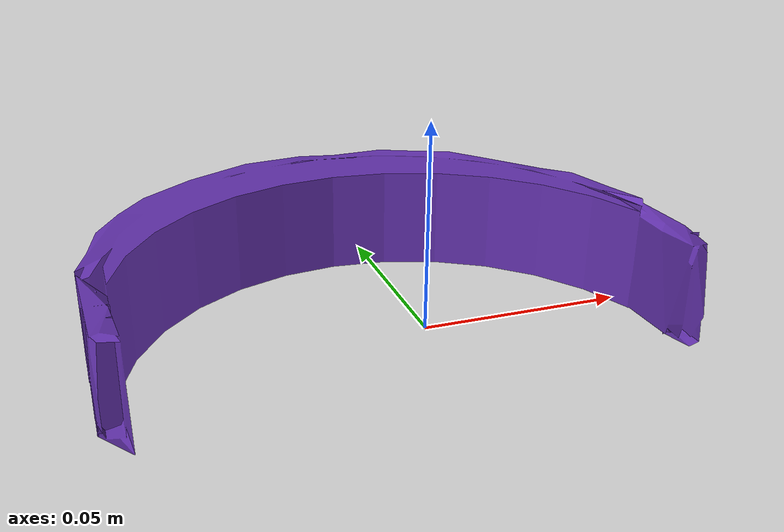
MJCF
<mujoco model="top_watertight_tiny">
  <default>
    <default group="2" type="mesh" contype="0" conaffinity="0">
      <geom group="2" type="mesh" contype="0" conaffinity="0"/>
    </default>
    <default group="3" type="mesh">
      <geom group="3" type="mesh"/>
    </default>
  </default>
  <asset>
    <mesh file="top_watertight_tiny.obj"/>
    <mesh file="top_watertight_tiny_collision_0.obj"/>
    <mesh file="top_watertight_tiny_collision_1.obj"/>
    <mesh file="top_watertight_tiny_collision_2.obj"/>
    <mesh file="top_watertight_tiny_collision_3.obj"/>
    <mesh file="top_watertight_tiny_collision_4.obj"/>
    <mesh file="top_watertight_tiny_collision_5.obj"/>
    <mesh file="top_watertight_tiny_collision_6.obj"/>
    <mesh file="top_watertight_tiny_collision_7.obj"/>
    <mesh file="top_watertight_tiny_collision_8.obj"/>
    <mesh file="top_watertight_tiny_collision_9.obj"/>
    <mesh file="top_watertight_tiny_collision_10.obj"/>
    <mesh file="top_watertight_tiny_collision_11.obj"/>
    <mesh file="top_watertight_tiny_collision_12.obj"/>
    <mesh file="top_watertight_tiny_collision_13.obj"/>
    <mesh file="top_watertight_tiny_collision_14.obj"/>
    <mesh file="top_watertight_tiny_collision_15.obj"/>
    <mesh file="top_watertight_tiny_collision_16.obj"/>
    <mesh file="top_watertight_tiny_collision_17.obj"/>
  </asset>
  <worldbody>
    <body name="top_watertight_tiny">
      <freejoint/>
      <geom mesh="top_watertight_tiny" group="2" type="mesh" rgba="0.4 0.2 0.7 1" contype="0" conaffinity="0"/>
      <geom mesh="top_watertight_tiny_collision_0" rgba="0.20229317502027622 0.5593707499433282 0.1768660645963801 1" group="3" type="mesh"/>
      <geom mesh="top_watertight_tiny_collision_1" rgba="0.38988327720262594 0.026453023188534375 0.7158144933441691 1" group="3" type="mesh"/>
      <geom mesh="top_watertight_tiny_collision_2" rgba="0.41634416508141336 0.6146423084752962 0.449605122721051 1" group="3" type="mesh"/>
      <geom mesh="top_watertight_tiny_collision_3" rgba="0.14876053033735637 0.3370912123189568 0.5168839835278337 1" group="3" type="mesh"/>
      <geom mesh="top_watertight_tiny_collision_4" rgba="0.6713280488440589 0.4383982201345068 0.4212741586792762 1" group="3" type="mesh"/>
      <geom mesh="top_watertight_tiny_collision_5" rgba="0.632756677521681 0.247876290561988 0.11272600634847973 1" group="3" type="mesh"/>
      <geom mesh="top_watertight_tiny_collision_6" rgba="0.47368285123528087 0.7162642410263819 0.7304983867073019 1" group="3" type="mesh"/>
      <geom mesh="top_watertight_tiny_collision_7" rgba="0.5532676294085539 0.5348104189366012 0.8631859902236199 1" group="3" type="mesh"/>
      <geom mesh="top_watertight_tiny_collision_8" rgba="0.5562935954247225 0.9036795614096016 0.3688566872184441 1" group="3" type="mesh"/>
      <geom mesh="top_watertight_tiny_collision_9" rgba="0.049862386243507584 0.5065625627275031 0.9210775974638412 1" group="3" type="mesh"/>
      <geom mesh="top_watertight_tiny_collision_10" rgba="0.5084629303185367 0.21150866983903205 0.598428520265262 1" group="3" type="mesh"/>
      <geom mesh="top_watertight_tiny_collision_11" rgba="0.7287852257766577 0.6956434997202986 0.0661371819211728 1" group="3" type="mesh"/>
      <geom mesh="top_watertight_tiny_collision_12" rgba="0.969960875972942 0.8549358615491154 0.8631375097406778 1" group="3" type="mesh"/>
      <geom mesh="top_watertight_tiny_collision_13" rgba="0.48477312546422835 0.7531679830160246 0.6718192572403285 1" group="3" type="mesh"/>
      <geom mesh="top_watertight_tiny_collision_14" rgba="0.05504583032713173 0.882334197134392 0.4653138649713967 1" group="3" type="mesh"/>
      <geom mesh="top_watertight_tiny_collision_15" rgba="0.6791003345138711 0.07097447222455833 0.6952648918844212 1" group="3" type="mesh"/>
      <geom mesh="top_watertight_tiny_collision_16" rgba="0.17012907617239492 0.8587654888373657 0.2883840612151275 1" group="3" type="mesh"/>
      <geom mesh="top_watertight_tiny_collision_17" rgba="0.3968356474473512 0.5256996159641439 0.10567266186844515 1" group="3" type="mesh"/>
    </body>
  </worldbody>
</mujoco>
